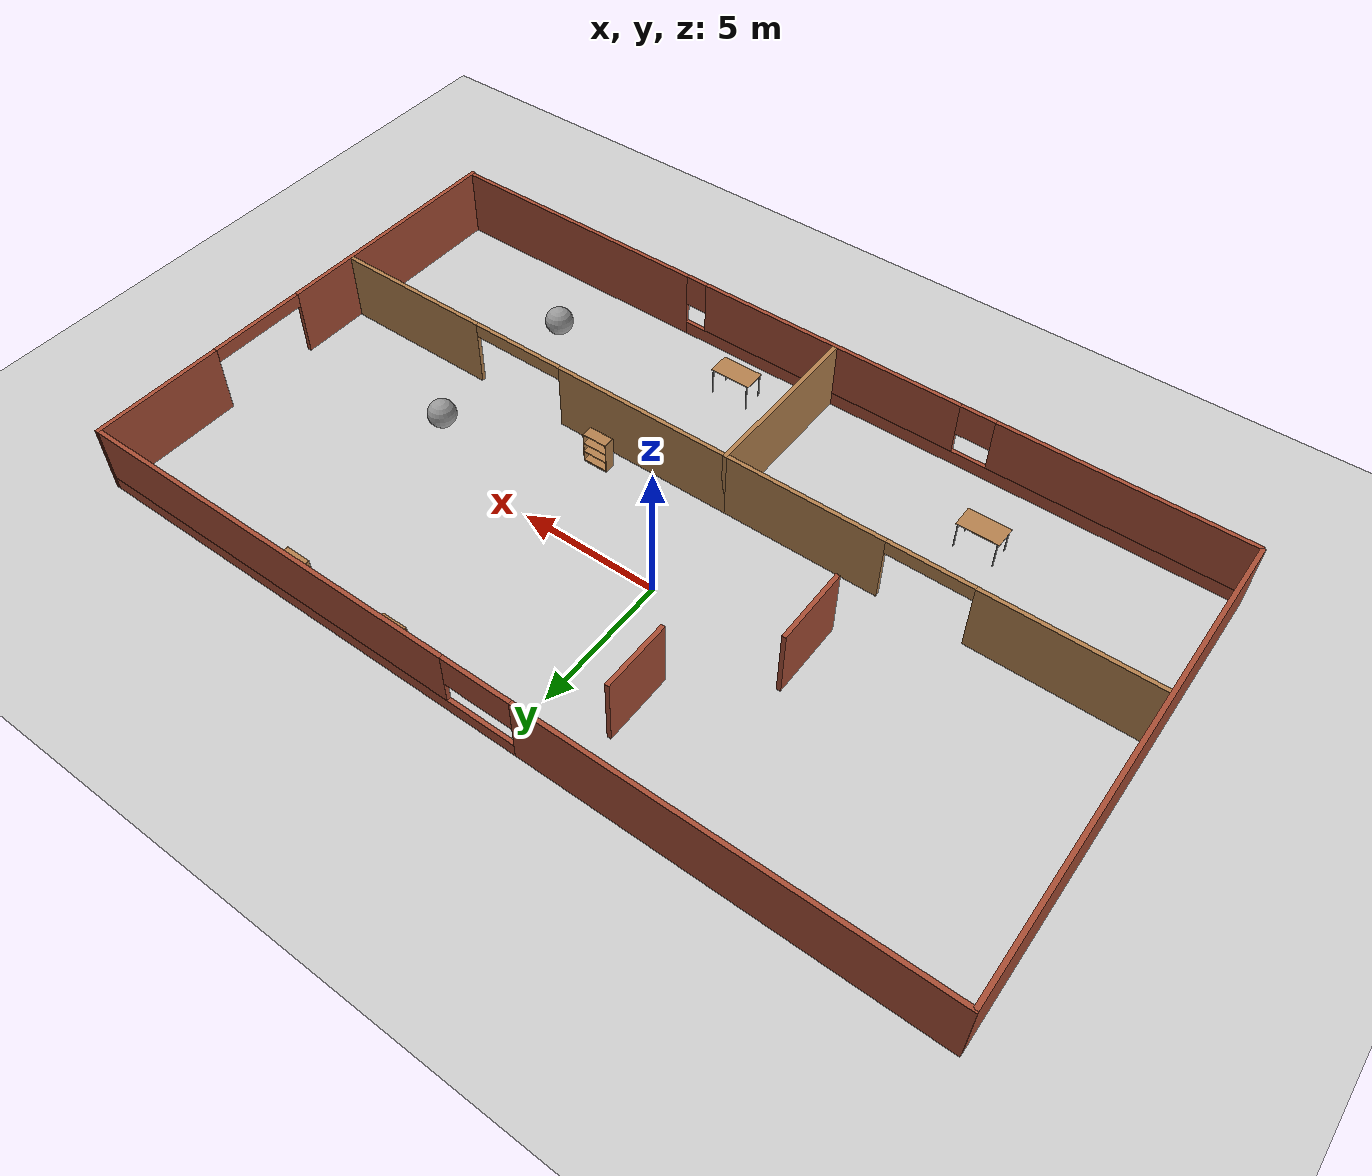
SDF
<sdf version="1.6">
 <world name="default">
  <light name="sun" type="directional">
   <pose>0 0 10 0 -0 0</pose>
   <diffuse>0.8 0.8 0.8 1</diffuse>
   <specular>0.2 0.2 0.2 1</specular>
   <attenuation>
    <range>1000</range>
    <constant>0.9</constant>
    <linear>0.01</linear>
    <quadratic>0.001</quadratic>
   </attenuation>
   <direction>-0.5 0.1 -0.9</direction>
  </light>
  <model name="ground_plane">
   <static>1</static>
   <link name="link">
    <collision name="collision">
     <geometry><plane><normal>0 0 1</normal><size>100 100</size></plane></geometry>
     <surface>
      <contact><collide_bitmask>65535</collide_bitmask></contact>
      <friction><ode><mu>100</mu><mu2>50</mu2></ode></friction>
     </surface>
    </collision>
    <visual name="visual">
     <cast_shadows>0</cast_shadows>
     <geometry><plane><normal>0 0 1</normal><size>100 100</size></plane></geometry>
     <material>
      <script><uri>file://media/materials/scripts/gazebo.material</uri><name>Gazebo/Grey</name></script>
     </material>
    </visual>
   </link>
  </model>
  <gravity>0 0 -9.8</gravity>
  <magnetic_field>6e-06 2.3e-05 -4.2e-05</magnetic_field>
  <atmosphere type="adiabatic"/>
  <physics name="default_physics" default="0" type="ode">
   <max_step_size>0.001</max_step_size>
   <real_time_factor>1</real_time_factor>
   <real_time_update_rate>1000</real_time_update_rate>
  </physics>
  <scene><ambient>0.4 0.4 0.4 1</ambient><background>0.7 0.7 0.7 1</background><shadows>1</shadows></scene>
  <audio><device>default</device></audio>
  <spherical_coordinates>
   <surface_model>EARTH_WGS84</surface_model>
   <latitude_deg>0</latitude_deg>
   <longitude_deg>0</longitude_deg>
   <elevation>0</elevation>
   <heading_deg>0</heading_deg>
  </spherical_coordinates>
  <model name="myroom1">
   <pose>0.99713 -1.65438 0 0 -0 0</pose>
   <link name="Wall_0">
    <collision name="Wall_0_Collision">
     <geometry><box><size>17 0.15 2.5</size></box></geometry>
     <pose>0 0 1.25 0 -0 0</pose>
    </collision>
    <visual name="Wall_0_Visual">
     <pose>0 0 1.25 0 -0 0</pose>
     <geometry><box><size>17 0.15 2.5</size></box></geometry>
     <material>
      <script><uri>file://media/materials/scripts/gazebo.material</uri><name>Gazebo/Bricks</name></script>
      <ambient>1 1 1 1</ambient>
     </material>
     <meta><layer>0</layer></meta>
    </visual>
    <pose>-15.2531 -0.007562 0 0 -0 1.5708</pose>
   </link>
   <link name="Wall_1">
    <pose>-0.000124 8.51167 0 0 -0 0.002144</pose>
    <visual name="Wall_1_Visual_0">
     <pose>-8.42119 0 1.25 0 -0 0</pose>
     <geometry><box><size>13.8137 0.15 2.5</size></box></geometry>
     <material>
      <script><uri>file://media/materials/scripts/gazebo.material</uri><name>Gazebo/Bricks</name></script>
      <ambient>1 1 1 1</ambient>
     </material>
     <meta><layer>0</layer></meta>
    </visual>
    <collision name="Wall_1_Collision_0">
     <geometry><box><size>13.8137 0.15 2.5</size></box></geometry>
     <pose>-8.42119 0 1.25 0 -0 0</pose>
    </collision>
    <visual name="Wall_1_Visual_1">
     <pose>6.90684 0 0.25 0 -0 0</pose>
     <geometry><box><size>16.8424 0.15 0.5</size></box></geometry>
     <material>
      <script><uri>file://media/materials/scripts/gazebo.material</uri><name>Gazebo/Bricks</name></script>
      <ambient>1 1 1 1</ambient>
     </material>
     <meta><layer>0</layer></meta>
    </visual>
    <collision name="Wall_1_Collision_1">
     <geometry><box><size>16.8424 0.15 0.5</size></box></geometry>
     <pose>6.90684 0 0.25 0 -0 0</pose>
    </collision>
    <visual name="Wall_1_Visual_2">
     <pose>8.13354 0 1.5 0 -0 0</pose>
     <geometry><box><size>14.389 0.15 2</size></box></geometry>
     <material>
      <script><uri>file://media/materials/scripts/gazebo.material</uri><name>Gazebo/Bricks</name></script>
      <ambient>1 1 1 1</ambient>
     </material>
     <meta><layer>0</layer></meta>
    </visual>
    <collision name="Wall_1_Collision_2">
     <geometry><box><size>14.389 0.15 2</size></box></geometry>
     <pose>8.13354 0 1.5 0 -0 0</pose>
    </collision>
    <visual name="Wall_1_Visual_3">
     <pose>-0.287646 0 1.9 0 -0 0</pose>
     <geometry><box><size>2.4534 0.15 1.2</size></box></geometry>
     <material>
      <script><uri>file://media/materials/scripts/gazebo.material</uri><name>Gazebo/Bricks</name></script>
      <ambient>1 1 1 1</ambient>
     </material>
     <meta><layer>0</layer></meta>
    </visual>
    <collision name="Wall_1_Collision_3">
     <geometry><box><size>2.4534 0.15 1.2</size></box></geometry>
     <pose>-0.287646 0 1.9 0 -0 0</pose>
    </collision>
   </link>
   <link name="Wall_11">
    <collision name="Wall_11_Collision">
     <geometry><box><size>2.75 0.15 2.5</size></box></geometry>
     <pose>0 0 1.25 0 -0 0</pose>
    </collision>
    <visual name="Wall_11_Visual">
     <pose>0 0 1.25 0 -0 0</pose>
     <geometry><box><size>2.75 0.15 2.5</size></box></geometry>
     <material>
      <script><uri>file://media/materials/scripts/gazebo.material</uri><name>Gazebo/Bricks</name></script>
      <ambient>1 1 1 1</ambient>
     </material>
     <meta><layer>0</layer></meta>
    </visual>
    <pose>-6.05315 1.04163 0 0 -0 1.5708</pose>
   </link>
   <link name="Wall_13">
    <collision name="Wall_13_Collision">
     <geometry><box><size>2.5 0.15 2.5</size></box></geometry>
     <pose>0 0 1.25 0 -0 0</pose>
    </collision>
    <visual name="Wall_13_Visual">
     <pose>0 0 1.25 0 -0 0</pose>
     <geometry><box><size>2.5 0.15 2.5</size></box></geometry>
     <material>
      <script><uri>file://media/materials/scripts/gazebo.material</uri><name>Gazebo/Bricks</name></script>
      <ambient>1 1 1 1</ambient>
     </material>
     <meta><layer>0</layer></meta>
    </visual>
    <pose>-3.20518 5.32039 0 0 -0 -1.5708</pose>
   </link>
   <link name="Wall_2">
    <pose>15.2063 0 0 0 -0 -1.57624</pose>
    <visual name="Wall_2_Visual_0">
     <pose>-6.24156 0 1.25 0 -0 0</pose>
     <geometry><box><size>4.75589 0.15 2.5</size></box></geometry>
     <material>
      <script><uri>file://media/materials/scripts/gazebo.material</uri><name>Gazebo/Bricks</name></script>
      <ambient>1 1 1 1</ambient>
     </material>
     <meta><layer>0</layer></meta>
    </visual>
    <collision name="Wall_2_Collision_0">
     <geometry><box><size>4.75589 0.15 2.5</size></box></geometry>
     <pose>-6.24156 0 1.25 0 -0 0</pose>
    </collision>
    <visual name="Wall_2_Visual_1">
     <pose>4.1623 0 1.25 0 -0 0</pose>
     <geometry><box><size>8.91442 0.15 2.5</size></box></geometry>
     <material>
      <script><uri>file://media/materials/scripts/gazebo.material</uri><name>Gazebo/Bricks</name></script>
      <ambient>1 1 1 1</ambient>
     </material>
     <meta><layer>0</layer></meta>
    </visual>
    <collision name="Wall_2_Collision_1">
     <geometry><box><size>8.91442 0.15 2.5</size></box></geometry>
     <pose>4.1623 0 1.25 0 -0 0</pose>
    </collision>
    <visual name="Wall_2_Visual_2">
     <pose>-2.07926 0 2.25 0 -0 0</pose>
     <geometry><box><size>3.56871 0.15 0.5</size></box></geometry>
     <material>
      <script><uri>file://media/materials/scripts/gazebo.material</uri><name>Gazebo/Bricks</name></script>
      <ambient>1 1 1 1</ambient>
     </material>
     <meta><layer>0</layer></meta>
    </visual>
    <collision name="Wall_2_Collision_2">
     <geometry><box><size>3.56871 0.15 0.5</size></box></geometry>
     <pose>-2.07926 0 2.25 0 -0 0</pose>
    </collision>
   </link>
   <link name="Wall_3">
    <pose>-0.015178 -8.49786 0 0 -0 3.14159</pose>
    <visual name="Wall_3_Visual_0">
     <pose>-10.2245 0 1.25 0 -0 0</pose>
     <geometry><box><size>10.051 0.15 2.5</size></box></geometry>
     <material>
      <script><uri>file://media/materials/scripts/gazebo.material</uri><name>Gazebo/Bricks</name></script>
      <ambient>1 1 1 1</ambient>
     </material>
     <meta><layer>0</layer></meta>
    </visual>
    <collision name="Wall_3_Collision_0">
     <geometry><box><size>10.051 0.15 2.5</size></box></geometry>
     <pose>-10.2245 0 1.25 0 -0 0</pose>
    </collision>
    <visual name="Wall_3_Visual_1">
     <pose>5.02549 0 0.25 0 -0 0</pose>
     <geometry><box><size>20.449 0.15 0.5</size></box></geometry>
     <material>
      <script><uri>file://media/materials/scripts/gazebo.material</uri><name>Gazebo/Bricks</name></script>
      <ambient>1 1 1 1</ambient>
     </material>
     <meta><layer>0</layer></meta>
    </visual>
    <collision name="Wall_3_Collision_1">
     <geometry><box><size>20.449 0.15 0.5</size></box></geometry>
     <pose>5.02549 0 0.25 0 -0 0</pose>
    </collision>
    <visual name="Wall_3_Visual_2">
     <pose>0.515648 0 1.5 0 -0 0</pose>
     <geometry><box><size>9.82932 0.15 2</size></box></geometry>
     <material>
      <script><uri>file://media/materials/scripts/gazebo.material</uri><name>Gazebo/Bricks</name></script>
      <ambient>1 1 1 1</ambient>
     </material>
     <meta><layer>0</layer></meta>
    </visual>
    <collision name="Wall_3_Collision_2">
     <geometry><box><size>9.82932 0.15 2</size></box></geometry>
     <pose>0.515648 0 1.5 0 -0 0</pose>
    </collision>
    <visual name="Wall_3_Visual_3">
     <pose>10.9611 0 1.5 0 -0 0</pose>
     <geometry><box><size>8.57771 0.15 2</size></box></geometry>
     <material>
      <script><uri>file://media/materials/scripts/gazebo.material</uri><name>Gazebo/Bricks</name></script>
      <ambient>1 1 1 1</ambient>
     </material>
     <meta><layer>0</layer></meta>
    </visual>
    <collision name="Wall_3_Collision_3">
     <geometry><box><size>8.57771 0.15 2</size></box></geometry>
     <pose>10.9611 0 1.5 0 -0 0</pose>
    </collision>
    <visual name="Wall_3_Visual_4">
     <pose>-4.79901 0 1.9 0 -0 0</pose>
     <geometry><box><size>0.8 0.15 1.2</size></box></geometry>
     <material>
      <script><uri>file://media/materials/scripts/gazebo.material</uri><name>Gazebo/Bricks</name></script>
      <ambient>1 1 1 1</ambient>
     </material>
     <meta><layer>0</layer></meta>
    </visual>
    <collision name="Wall_3_Collision_4">
     <geometry><box><size>0.8 0.15 1.2</size></box></geometry>
     <pose>-4.79901 0 1.9 0 -0 0</pose>
    </collision>
    <visual name="Wall_3_Visual_5">
     <pose>6.0513 0 1.9 0 -0 0</pose>
     <geometry><box><size>1.24198 0.15 1.2</size></box></geometry>
     <material>
      <script><uri>file://media/materials/scripts/gazebo.material</uri><name>Gazebo/Bricks</name></script>
      <ambient>1 1 1 1</ambient>
     </material>
     <meta><layer>0</layer></meta>
    </visual>
    <collision name="Wall_3_Collision_5">
     <geometry><box><size>1.24198 0.15 1.2</size></box></geometry>
     <pose>6.0513 0 1.9 0 -0 0</pose>
    </collision>
   </link>
   <link name="Wall_6">
    <pose>-7.99554 -2.25485 0 0 -0 0</pose>
    <visual name="Wall_6_Visual_0">
     <pose>-4.32819 0 1.25 0 -0 0</pose>
     <geometry><box><size>5.84363 0.15 2.5</size></box></geometry>
     <material>
      <script><uri>file://media/materials/scripts/gazebo.material</uri><name>Gazebo/Wood</name></script>
      <ambient>1 1 1 1</ambient>
     </material>
     <meta><layer>0</layer></meta>
    </visual>
    <collision name="Wall_6_Collision_0">
     <geometry><box><size>5.84363 0.15 2.5</size></box></geometry>
     <pose>-4.32819 0 1.25 0 -0 0</pose>
    </collision>
    <visual name="Wall_6_Visual_1">
     <pose>4.38262 0 1.25 0 -0 0</pose>
     <geometry><box><size>5.73476 0.15 2.5</size></box></geometry>
     <material>
      <script><uri>file://media/materials/scripts/gazebo.material</uri><name>Gazebo/Wood</name></script>
      <ambient>1 1 1 1</ambient>
     </material>
     <meta><layer>0</layer></meta>
    </visual>
    <collision name="Wall_6_Collision_1">
     <geometry><box><size>5.73476 0.15 2.5</size></box></geometry>
     <pose>4.38262 0 1.25 0 -0 0</pose>
    </collision>
    <visual name="Wall_6_Visual_2">
     <pose>0.054433 0 2.25 0 -0 0</pose>
     <geometry><box><size>2.92162 0.15 0.5</size></box></geometry>
     <material>
      <script><uri>file://media/materials/scripts/gazebo.material</uri><name>Gazebo/Wood</name></script>
      <ambient>1 1 1 1</ambient>
     </material>
     <meta><layer>0</layer></meta>
    </visual>
    <collision name="Wall_6_Collision_2">
     <geometry><box><size>2.92162 0.15 0.5</size></box></geometry>
     <pose>0.054433 0 2.25 0 -0 0</pose>
    </collision>
   </link>
   <link name="Wall_7">
    <collision name="Wall_7_Collision">
     <geometry><box><size>6.25 0.15 2.5</size></box></geometry>
     <pose>0 0 1.25 0 -0 0</pose>
    </collision>
    <visual name="Wall_7_Visual">
     <pose>0 0 1.25 0 -0 0</pose>
     <geometry><box><size>6.25 0.15 2.5</size></box></geometry>
     <material>
      <script><uri>file://media/materials/scripts/gazebo.material</uri><name>Gazebo/Wood</name></script>
      <ambient>1 1 1 1</ambient>
     </material>
     <meta><layer>0</layer></meta>
    </visual>
    <pose>-0.820537 -5.30485 0 0 -0 -1.5708</pose>
   </link>
   <link name="Wall_9">
    <pose>7.10446 -2.25485 0 0 -0 0</pose>
    <visual name="Wall_9_Visual_0">
     <pose>-4.67937 0 1.25 0 -0 0</pose>
     <geometry><box><size>6.64126 0.15 2.5</size></box></geometry>
     <material>
      <script><uri>file://media/materials/scripts/gazebo.material</uri><name>Gazebo/Wood</name></script>
      <ambient>1 1 1 1</ambient>
     </material>
     <meta><layer>0</layer></meta>
    </visual>
    <collision name="Wall_9_Collision_0">
     <geometry><box><size>6.64126 0.15 2.5</size></box></geometry>
     <pose>-4.67937 0 1.25 0 -0 0</pose>
    </collision>
    <visual name="Wall_9_Visual_1">
     <pose>5.08734 0 1.25 0 -0 0</pose>
     <geometry><box><size>5.82532 0.15 2.5</size></box></geometry>
     <material>
      <script><uri>file://media/materials/scripts/gazebo.material</uri><name>Gazebo/Wood</name></script>
      <ambient>1 1 1 1</ambient>
     </material>
     <meta><layer>0</layer></meta>
    </visual>
    <collision name="Wall_9_Collision_1">
     <geometry><box><size>5.82532 0.15 2.5</size></box></geometry>
     <pose>5.08734 0 1.25 0 -0 0</pose>
    </collision>
    <visual name="Wall_9_Visual_2">
     <pose>0.40797 0 2.25 0 -0 0</pose>
     <geometry><box><size>3.53342 0.15 0.5</size></box></geometry>
     <material>
      <script><uri>file://media/materials/scripts/gazebo.material</uri><name>Gazebo/Wood</name></script>
      <ambient>1 1 1 1</ambient>
     </material>
     <meta><layer>0</layer></meta>
    </visual>
    <collision name="Wall_9_Collision_2">
     <geometry><box><size>3.53342 0.15 0.5</size></box></geometry>
     <pose>0.40797 0 2.25 0 -0 0</pose>
    </collision>
   </link>
   <static>1</static>
  </model>
  <model name="bookshelf">
   <static>1</static>
   <link name="link">
    <inertial><mass>1</mass></inertial>
    <collision name="back">
     <pose>0 0.005 0.6 0 -0 0</pose>
     <geometry><box><size>0.9 0.01 1.2</size></box></geometry>
    </collision>
    <visual name="visual1">
     <pose>0 0.005 0.6 0 -0 0</pose>
     <geometry><box><size>0.9 0.01 1.2</size></box></geometry>
     <material>
      <script><uri>file://media/materials/scripts/gazebo.material</uri><name>Gazebo/Wood</name></script>
     </material>
    </visual>
    <collision name="left_side">
     <pose>0.45 -0.195 0.6 0 -0 0</pose>
     <geometry><box><size>0.02 0.4 1.2</size></box></geometry>
    </collision>
    <visual name="visual2">
     <pose>0.45 -0.195 0.6 0 -0 0</pose>
     <geometry><box><size>0.02 0.4 1.2</size></box></geometry>
     <material>
      <script><uri>file://media/materials/scripts/gazebo.material</uri><name>Gazebo/Wood</name></script>
     </material>
    </visual>
    <collision name="right_side">
     <pose>-0.45 -0.195 0.6 0 -0 0</pose>
     <geometry><box><size>0.02 0.4 1.2</size></box></geometry>
    </collision>
    <visual name="visual3">
     <pose>-0.45 -0.195 0.6 0 -0 0</pose>
     <geometry><box><size>0.02 0.4 1.2</size></box></geometry>
     <material>
      <script><uri>file://media/materials/scripts/gazebo.material</uri><name>Gazebo/Wood</name></script>
     </material>
    </visual>
    <collision name="bottom">
     <pose>0 -0.195 0.03 0 -0 0</pose>
     <geometry><box><size>0.88 0.4 0.06</size></box></geometry>
    </collision>
    <visual name="visual4">
     <pose>0 -0.195 0.03 0 -0 0</pose>
     <geometry><box><size>0.88 0.4 0.06</size></box></geometry>
     <material>
      <script><uri>file://media/materials/scripts/gazebo.material</uri><name>Gazebo/Wood</name></script>
     </material>
    </visual>
    <collision name="top">
     <pose>0 -0.195 1.19 0 -0 0</pose>
     <geometry><box><size>0.88 0.4 0.02</size></box></geometry>
    </collision>
    <visual name="visual5">
     <pose>0 -0.195 1.19 0 -0 0</pose>
     <geometry><box><size>0.88 0.4 0.02</size></box></geometry>
     <material>
      <script><uri>file://media/materials/scripts/gazebo.material</uri><name>Gazebo/Wood</name></script>
     </material>
    </visual>
    <collision name="low_shelf">
     <pose>0 -0.195 0.43 0 -0 0</pose>
     <geometry><box><size>0.88 0.4 0.02</size></box></geometry>
    </collision>
    <visual name="visual6">
     <pose>0 -0.195 0.43 0 -0 0</pose>
     <geometry><box><size>0.88 0.4 0.02</size></box></geometry>
     <material>
      <script><uri>file://media/materials/scripts/gazebo.material</uri><name>Gazebo/Wood</name></script>
     </material>
    </visual>
    <collision name="high_shelf">
     <pose>0 -0.195 0.8 0 -0 0</pose>
     <geometry><box><size>0.88 0.4 0.02</size></box></geometry>
    </collision>
    <visual name="visual7">
     <pose>0 -0.195 0.8 0 -0 0</pose>
     <geometry><box><size>0.88 0.4 0.02</size></box></geometry>
     <material>
      <script><uri>file://media/materials/scripts/gazebo.material</uri><name>Gazebo/Wood</name></script>
     </material>
    </visual>
   </link>
   <pose>4.61942 6.4913 0 0 -0 0</pose>
  </model>
  <model name="bookshelf_0">
   <static>1</static>
   <link name="link">
    <inertial><mass>1</mass></inertial>
    <collision name="back">
     <pose>0 0.005 0.6 0 -0 0</pose>
     <geometry><box><size>0.9 0.01 1.2</size></box></geometry>
    </collision>
    <visual name="visual1">
     <pose>0 0.005 0.6 0 -0 0</pose>
     <geometry><box><size>0.9 0.01 1.2</size></box></geometry>
     <material>
      <script><uri>file://media/materials/scripts/gazebo.material</uri><name>Gazebo/Wood</name></script>
     </material>
    </visual>
    <collision name="left_side">
     <pose>0.45 -0.195 0.6 0 -0 0</pose>
     <geometry><box><size>0.02 0.4 1.2</size></box></geometry>
    </collision>
    <visual name="visual2">
     <pose>0.45 -0.195 0.6 0 -0 0</pose>
     <geometry><box><size>0.02 0.4 1.2</size></box></geometry>
     <material>
      <script><uri>file://media/materials/scripts/gazebo.material</uri><name>Gazebo/Wood</name></script>
     </material>
    </visual>
    <collision name="right_side">
     <pose>-0.45 -0.195 0.6 0 -0 0</pose>
     <geometry><box><size>0.02 0.4 1.2</size></box></geometry>
    </collision>
    <visual name="visual3">
     <pose>-0.45 -0.195 0.6 0 -0 0</pose>
     <geometry><box><size>0.02 0.4 1.2</size></box></geometry>
     <material>
      <script><uri>file://media/materials/scripts/gazebo.material</uri><name>Gazebo/Wood</name></script>
     </material>
    </visual>
    <collision name="bottom">
     <pose>0 -0.195 0.03 0 -0 0</pose>
     <geometry><box><size>0.88 0.4 0.06</size></box></geometry>
    </collision>
    <visual name="visual4">
     <pose>0 -0.195 0.03 0 -0 0</pose>
     <geometry><box><size>0.88 0.4 0.06</size></box></geometry>
     <material>
      <script><uri>file://media/materials/scripts/gazebo.material</uri><name>Gazebo/Wood</name></script>
     </material>
    </visual>
    <collision name="top">
     <pose>0 -0.195 1.19 0 -0 0</pose>
     <geometry><box><size>0.88 0.4 0.02</size></box></geometry>
    </collision>
    <visual name="visual5">
     <pose>0 -0.195 1.19 0 -0 0</pose>
     <geometry><box><size>0.88 0.4 0.02</size></box></geometry>
     <material>
      <script><uri>file://media/materials/scripts/gazebo.material</uri><name>Gazebo/Wood</name></script>
     </material>
    </visual>
    <collision name="low_shelf">
     <pose>0 -0.195 0.43 0 -0 0</pose>
     <geometry><box><size>0.88 0.4 0.02</size></box></geometry>
    </collision>
    <visual name="visual6">
     <pose>0 -0.195 0.43 0 -0 0</pose>
     <geometry><box><size>0.88 0.4 0.02</size></box></geometry>
     <material>
      <script><uri>file://media/materials/scripts/gazebo.material</uri><name>Gazebo/Wood</name></script>
     </material>
    </visual>
    <collision name="high_shelf">
     <pose>0 -0.195 0.8 0 -0 0</pose>
     <geometry><box><size>0.88 0.4 0.02</size></box></geometry>
    </collision>
    <visual name="visual7">
     <pose>0 -0.195 0.8 0 -0 0</pose>
     <geometry><box><size>0.88 0.4 0.02</size></box></geometry>
     <material>
      <script><uri>file://media/materials/scripts/gazebo.material</uri><name>Gazebo/Wood</name></script>
     </material>
    </visual>
   </link>
   <pose>8.65406 6.41675 0 0 -0 0</pose>
  </model>
  <model name="bookshelf_1">
   <static>1</static>
   <link name="link">
    <inertial><mass>1</mass></inertial>
    <collision name="back">
     <pose>0 0.005 0.6 0 -0 0</pose>
     <geometry><box><size>0.9 0.01 1.2</size></box></geometry>
    </collision>
    <visual name="visual1">
     <pose>0 0.005 0.6 0 -0 0</pose>
     <geometry><box><size>0.9 0.01 1.2</size></box></geometry>
     <material>
      <script><uri>file://media/materials/scripts/gazebo.material</uri><name>Gazebo/Wood</name></script>
     </material>
    </visual>
    <collision name="left_side">
     <pose>0.45 -0.195 0.6 0 -0 0</pose>
     <geometry><box><size>0.02 0.4 1.2</size></box></geometry>
    </collision>
    <visual name="visual2">
     <pose>0.45 -0.195 0.6 0 -0 0</pose>
     <geometry><box><size>0.02 0.4 1.2</size></box></geometry>
     <material>
      <script><uri>file://media/materials/scripts/gazebo.material</uri><name>Gazebo/Wood</name></script>
     </material>
    </visual>
    <collision name="right_side">
     <pose>-0.45 -0.195 0.6 0 -0 0</pose>
     <geometry><box><size>0.02 0.4 1.2</size></box></geometry>
    </collision>
    <visual name="visual3">
     <pose>-0.45 -0.195 0.6 0 -0 0</pose>
     <geometry><box><size>0.02 0.4 1.2</size></box></geometry>
     <material>
      <script><uri>file://media/materials/scripts/gazebo.material</uri><name>Gazebo/Wood</name></script>
     </material>
    </visual>
    <collision name="bottom">
     <pose>0 -0.195 0.03 0 -0 0</pose>
     <geometry><box><size>0.88 0.4 0.06</size></box></geometry>
    </collision>
    <visual name="visual4">
     <pose>0 -0.195 0.03 0 -0 0</pose>
     <geometry><box><size>0.88 0.4 0.06</size></box></geometry>
     <material>
      <script><uri>file://media/materials/scripts/gazebo.material</uri><name>Gazebo/Wood</name></script>
     </material>
    </visual>
    <collision name="top">
     <pose>0 -0.195 1.19 0 -0 0</pose>
     <geometry><box><size>0.88 0.4 0.02</size></box></geometry>
    </collision>
    <visual name="visual5">
     <pose>0 -0.195 1.19 0 -0 0</pose>
     <geometry><box><size>0.88 0.4 0.02</size></box></geometry>
     <material>
      <script><uri>file://media/materials/scripts/gazebo.material</uri><name>Gazebo/Wood</name></script>
     </material>
    </visual>
    <collision name="low_shelf">
     <pose>0 -0.195 0.43 0 -0 0</pose>
     <geometry><box><size>0.88 0.4 0.02</size></box></geometry>
    </collision>
    <visual name="visual6">
     <pose>0 -0.195 0.43 0 -0 0</pose>
     <geometry><box><size>0.88 0.4 0.02</size></box></geometry>
     <material>
      <script><uri>file://media/materials/scripts/gazebo.material</uri><name>Gazebo/Wood</name></script>
     </material>
    </visual>
    <collision name="high_shelf">
     <pose>0 -0.195 0.8 0 -0 0</pose>
     <geometry><box><size>0.88 0.4 0.02</size></box></geometry>
    </collision>
    <visual name="visual7">
     <pose>0 -0.195 0.8 0 -0 0</pose>
     <geometry><box><size>0.88 0.4 0.02</size></box></geometry>
     <material>
      <script><uri>file://media/materials/scripts/gazebo.material</uri><name>Gazebo/Wood</name></script>
     </material>
    </visual>
   </link>
   <pose>4.62643 -3.36885 0 0 -0 -3.13319</pose>
  </model>
  <model name="table">
   <static>1</static>
   <link name="link">
    <collision name="surface">
     <pose>0 0 1 0 -0 0</pose>
     <geometry><box><size>1.5 0.8 0.03</size></box></geometry>
     <surface><friction><ode><mu>0.6</mu><mu2>0.6</mu2></ode></friction></surface>
    </collision>
    <visual name="visual1">
     <pose>0 0 1 0 -0 0</pose>
     <geometry><box><size>1.5 0.8 0.03</size></box></geometry>
     <material>
      <script><uri>file://media/materials/scripts/gazebo.material</uri><name>Gazebo/Wood</name></script>
     </material>
    </visual>
    <collision name="front_left_leg">
     <pose>0.68 0.38 0.5 0 -0 0</pose>
     <geometry><cylinder><radius>0.02</radius><length>1</length></cylinder></geometry>
    </collision>
    <visual name="front_left_leg">
     <pose>0.68 0.38 0.5 0 -0 0</pose>
     <geometry><cylinder><radius>0.02</radius><length>1</length></cylinder></geometry>
     <material>
      <script><uri>file://media/materials/scripts/gazebo.material</uri><name>Gazebo/Grey</name></script>
     </material>
    </visual>
    <collision name="front_right_leg">
     <pose>0.68 -0.38 0.5 0 -0 0</pose>
     <geometry><cylinder><radius>0.02</radius><length>1</length></cylinder></geometry>
    </collision>
    <visual name="front_right_leg">
     <pose>0.68 -0.38 0.5 0 -0 0</pose>
     <geometry><cylinder><radius>0.02</radius><length>1</length></cylinder></geometry>
     <material>
      <script><uri>file://media/materials/scripts/gazebo.material</uri><name>Gazebo/Grey</name></script>
     </material>
    </visual>
    <collision name="back_right_leg">
     <pose>-0.68 -0.38 0.5 0 -0 0</pose>
     <geometry><cylinder><radius>0.02</radius><length>1</length></cylinder></geometry>
    </collision>
    <visual name="back_right_leg">
     <pose>-0.68 -0.38 0.5 0 -0 0</pose>
     <geometry><cylinder><radius>0.02</radius><length>1</length></cylinder></geometry>
     <material>
      <script><uri>file://media/materials/scripts/gazebo.material</uri><name>Gazebo/Grey</name></script>
     </material>
    </visual>
    <collision name="back_left_leg">
     <pose>-0.68 0.38 0.5 0 -0 0</pose>
     <geometry><cylinder><radius>0.02</radius><length>1</length></cylinder></geometry>
    </collision>
    <visual name="back_left_leg">
     <pose>-0.68 0.38 0.5 0 -0 0</pose>
     <geometry><cylinder><radius>0.02</radius><length>1</length></cylinder></geometry>
     <material>
      <script><uri>file://media/materials/scripts/gazebo.material</uri><name>Gazebo/Grey</name></script>
     </material>
    </visual>
   </link>
   <pose>-7.03228 -7.37988 0 0 -0 0</pose>
  </model>
  <model name="table_0">
   <static>1</static>
   <link name="link">
    <collision name="surface">
     <pose>0 0 1 0 -0 0</pose>
     <geometry><box><size>1.5 0.8 0.03</size></box></geometry>
     <surface><friction><ode><mu>0.6</mu><mu2>0.6</mu2></ode></friction></surface>
    </collision>
    <visual name="visual1">
     <pose>0 0 1 0 -0 0</pose>
     <geometry><box><size>1.5 0.8 0.03</size></box></geometry>
     <material>
      <script><uri>file://media/materials/scripts/gazebo.material</uri><name>Gazebo/Wood</name></script>
     </material>
    </visual>
    <collision name="front_left_leg">
     <pose>0.68 0.38 0.5 0 -0 0</pose>
     <geometry><cylinder><radius>0.02</radius><length>1</length></cylinder></geometry>
    </collision>
    <visual name="front_left_leg">
     <pose>0.68 0.38 0.5 0 -0 0</pose>
     <geometry><cylinder><radius>0.02</radius><length>1</length></cylinder></geometry>
     <material>
      <script><uri>file://media/materials/scripts/gazebo.material</uri><name>Gazebo/Grey</name></script>
     </material>
    </visual>
    <collision name="front_right_leg">
     <pose>0.68 -0.38 0.5 0 -0 0</pose>
     <geometry><cylinder><radius>0.02</radius><length>1</length></cylinder></geometry>
    </collision>
    <visual name="front_right_leg">
     <pose>0.68 -0.38 0.5 0 -0 0</pose>
     <geometry><cylinder><radius>0.02</radius><length>1</length></cylinder></geometry>
     <material>
      <script><uri>file://media/materials/scripts/gazebo.material</uri><name>Gazebo/Grey</name></script>
     </material>
    </visual>
    <collision name="back_right_leg">
     <pose>-0.68 -0.38 0.5 0 -0 0</pose>
     <geometry><cylinder><radius>0.02</radius><length>1</length></cylinder></geometry>
    </collision>
    <visual name="back_right_leg">
     <pose>-0.68 -0.38 0.5 0 -0 0</pose>
     <geometry><cylinder><radius>0.02</radius><length>1</length></cylinder></geometry>
     <material>
      <script><uri>file://media/materials/scripts/gazebo.material</uri><name>Gazebo/Grey</name></script>
     </material>
    </visual>
    <collision name="back_left_leg">
     <pose>-0.68 0.38 0.5 0 -0 0</pose>
     <geometry><cylinder><radius>0.02</radius><length>1</length></cylinder></geometry>
    </collision>
    <visual name="back_left_leg">
     <pose>-0.68 0.38 0.5 0 -0 0</pose>
     <geometry><cylinder><radius>0.02</radius><length>1</length></cylinder></geometry>
     <material>
      <script><uri>file://media/materials/scripts/gazebo.material</uri><name>Gazebo/Grey</name></script>
     </material>
    </visual>
   </link>
   <pose>2.94384 -8.52425 0 0 -0 0</pose>
  </model>
  <model name="unit_sphere">
   <pose>9.79172 -7.41801 0.5 0 -0 0</pose>
   <link name="link">
    <inertial>
     <mass>1</mass>
     <inertia><ixx>0.1</ixx><ixy>0</ixy><ixz>0</ixz><iyy>0.1</iyy><iyz>0</iyz><izz>0.1</izz></inertia>
    </inertial>
    <collision name="collision"><geometry><sphere><radius>0.5</radius></sphere></geometry></collision>
    <visual name="visual">
     <geometry><sphere><radius>0.5</radius></sphere></geometry>
     <material>
      <script><name>Gazebo/Grey</name><uri>file://media/materials/scripts/gazebo.material</uri></script>
     </material>
    </visual>
   </link>
  </model>
  <model name="unit_sphere_0">
   <pose>9.89789 -1.45347 0.5 0 -0 0</pose>
   <link name="link">
    <inertial>
     <mass>1</mass>
     <inertia><ixx>0.1</ixx><ixy>0</ixy><ixz>0</ixz><iyy>0.1</iyy><iyz>0</iyz><izz>0.1</izz></inertia>
    </inertial>
    <collision name="collision"><geometry><sphere><radius>0.5</radius></sphere></geometry></collision>
    <visual name="visual">
     <geometry><sphere><radius>0.5</radius></sphere></geometry>
     <material>
      <script><name>Gazebo/Grey</name><uri>file://media/materials/scripts/gazebo.material</uri></script>
     </material>
    </visual>
   </link>
  </model>
 </world>
</sdf>
